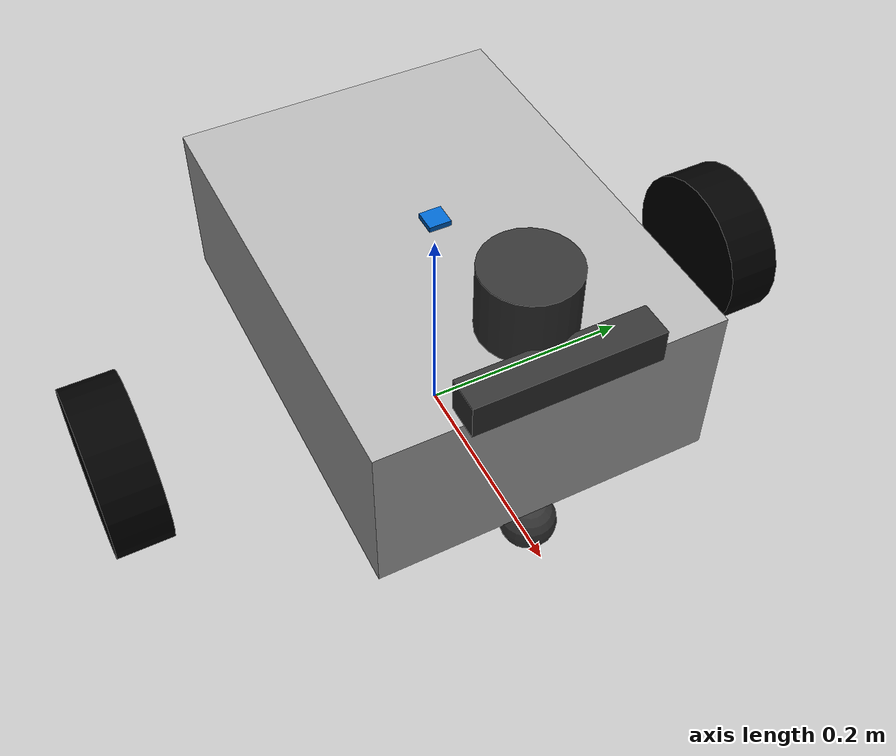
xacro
<?xml version="1.0"?>
<robot xmlns:xacro="http://www.ros.org/wiki/xacro" name="diff_drive_robot">

  <!--  Parameters                                               -->
  <xacro:property name="base_length"  value="0.40"/>
  <xacro:property name="base_width"   value="0.30"/>
  <xacro:property name="base_height"  value="0.15"/>
  <xacro:property name="wheel_radius" value="0.075"/>
  <xacro:property name="wheel_width"  value="0.05"/>
  <xacro:property name="wheel_sep"    value="0.30"/>   <!-- half-track -->
  <xacro:property name="caster_r"     value="0.025"/>

  <!--  Materials                                                -->
  <material name="dark_grey"><color rgba="0.2 0.2 0.2 1"/></material>
  <material name="light_grey"><color rgba="0.7 0.7 0.7 1"/></material>
  <material name="blue"><color rgba="0.0 0.4 0.8 1"/></material>
  <material name="black"><color rgba="0.0 0.0 0.0 1"/></material>

  <!--  Macros                                                   -->
  <xacro:macro name="wheel" params="name side reflect">
    <link name="${name}_wheel">
      <visual>
        <origin xyz="0 0 0" rpy="${pi/2} 0 0"/>
        <geometry><cylinder radius="${wheel_radius}" length="${wheel_width}"/></geometry>
        <material name="black"/>
      </visual>
      <collision>
        <origin xyz="0 0 0" rpy="${pi/2} 0 0"/>
        <geometry><cylinder radius="${wheel_radius}" length="${wheel_width}"/></geometry>
      </collision>
      <inertial>
        <mass value="0.5"/>
        <inertia ixx="0.001" ixy="0" ixz="0" iyy="0.001" iyz="0" izz="0.001"/>
      </inertial>
    </link>

    <joint name="${name}_wheel_joint" type="continuous">
      <parent link="base_link"/>
      <child  link="${name}_wheel"/>
      <origin xyz="0 ${reflect * wheel_sep} 0" rpy="0 0 0"/>
      <axis xyz="0 1 0"/>
      <dynamics damping="0.1"/>
    </joint>
  </xacro:macro>

  <!--  Base footprint                                           -->
  <link name="base_footprint"/>

  <joint name="base_footprint_joint" type="fixed">
    <parent link="base_footprint"/>
    <child  link="base_link"/>
    <origin xyz="0 0 ${wheel_radius}" rpy="0 0 0"/>
  </joint>

  <!--  Base link                                                -->
  <link name="base_link">
    <visual>
      <origin xyz="0 0 ${base_height/2}" rpy="0 0 0"/>
      <geometry>
        <box size="${base_length} ${base_width} ${base_height}"/>
      </geometry>
      <material name="light_grey"/>
    </visual>
    <collision>
      <origin xyz="0 0 ${base_height/2}" rpy="0 0 0"/>
      <geometry>
        <box size="${base_length} ${base_width} ${base_height}"/>
      </geometry>
    </collision>
    <inertial>
      <mass value="5.0"/>
      <origin xyz="0 0 ${base_height/2}"/>
      <inertia ixx="0.05" ixy="0" ixz="0" iyy="0.05" iyz="0" izz="0.08"/>
    </inertial>
  </link>

  <!--  Wheels                                                   -->
  <xacro:wheel name="left"  side="left"  reflect=" 1"/>
  <xacro:wheel name="right" side="right" reflect="-1"/>

  <!-- Front caster -->
  <link name="caster_link">
    <visual>
      <geometry><sphere radius="${caster_r}"/></geometry>
      <material name="dark_grey"/>
    </visual>
    <collision>
      <geometry><sphere radius="${caster_r}"/></geometry>
    </collision>
    <inertial>
      <mass value="0.1"/>
      <inertia ixx="0.0001" ixy="0" ixz="0" iyy="0.0001" iyz="0" izz="0.0001"/>
    </inertial>
  </link>
  <joint name="caster_joint" type="fixed">
    <parent link="base_link"/>
    <child  link="caster_link"/>
    <origin xyz="${base_length/2 - caster_r} 0 ${-wheel_radius + caster_r}" rpy="0 0 0"/>
  </joint>

  <!--  IMU                                                      -->
  <link name="imu_link">
    <visual>
      <geometry><box size="0.02 0.02 0.01"/></geometry>
      <material name="blue"/>
    </visual>
    <inertial>
      <mass value="0.01"/>
      <inertia ixx="0.000001" ixy="0" ixz="0" iyy="0.000001" iyz="0" izz="0.000001"/>
    </inertial>
  </link>
  <joint name="imu_joint" type="fixed">
    <parent link="base_link"/>
    <child  link="imu_link"/>
    <origin xyz="0 0 ${base_height}" rpy="0 0 0"/>
  </joint>

  <!--  2D LiDAR                                                 -->
  <link name="lidar_link">
    <visual>
      <geometry><cylinder radius="0.04" length="0.06"/></geometry>
      <material name="dark_grey"/>
    </visual>
    <collision>
      <geometry><cylinder radius="0.04" length="0.06"/></geometry>
    </collision>
    <inertial>
      <mass value="0.15"/>
      <inertia ixx="0.0001" ixy="0" ixz="0" iyy="0.0001" iyz="0" izz="0.0001"/>
    </inertial>
  </link>
  <joint name="lidar_joint" type="fixed">
    <parent link="base_link"/>
    <child  link="lidar_link"/>
    <origin xyz="${base_length/2 - 0.05} 0 ${base_height + 0.05}" rpy="0 0 0"/>
  </joint>

  <!--  Stereo Camera                                            -->
  <xacro:property name="stereo_baseline" value="0.12"/>   <!-- 12 cm baseline -->

  <!-- Stereo camera housing -->
  <link name="stereo_camera_link">
    <visual>
      <geometry><box size="0.03 ${stereo_baseline + 0.04} 0.03"/></geometry>
      <material name="dark_grey"/>
    </visual>
    <inertial>
      <mass value="0.15"/>
      <inertia ixx="0.0001" ixy="0" ixz="0" iyy="0.0001" iyz="0" izz="0.0001"/>
    </inertial>
  </link>
  <joint name="stereo_camera_joint" type="fixed">
    <parent link="base_link"/>
    <child  link="stereo_camera_link"/>
    <origin xyz="${base_length/2} 0 ${base_height + 0.02}" rpy="0 0 0"/>
  </joint>

  <!-- Left lens -->
  <link name="camera_left_link"/>
  <joint name="camera_left_joint" type="fixed">
    <parent link="stereo_camera_link"/>
    <child  link="camera_left_link"/>
    <origin xyz="0 ${stereo_baseline/2} 0" rpy="0 0 0"/>
  </joint>

  <link name="camera_left_optical_link"/>
  <joint name="camera_left_optical_joint" type="fixed">
    <parent link="camera_left_link"/>
    <child  link="camera_left_optical_link"/>
    <origin xyz="0 0 0" rpy="${-pi/2} 0 ${-pi/2}"/>
  </joint>

  <!-- Right lens -->
  <link name="camera_right_link"/>
  <joint name="camera_right_joint" type="fixed">
    <parent link="stereo_camera_link"/>
    <child  link="camera_right_link"/>
    <origin xyz="0 ${-stereo_baseline/2} 0" rpy="0 0 0"/>
  </joint>

  <link name="camera_right_optical_link"/>
  <joint name="camera_right_optical_joint" type="fixed">
    <parent link="camera_right_link"/>
    <child  link="camera_right_optical_link"/>
    <origin xyz="0 0 0" rpy="${-pi/2} 0 ${-pi/2}"/>
  </joint>

  <!--  Gazebo plugins                                           -->
  <!-- ros2_control interface -->
  <ros2_control name="diff_drive_system" type="system">
    <hardware>
      <plugin>gazebo_ros2_control/GazeboSystem</plugin>
    </hardware>
    <joint name="left_wheel_joint">
      <command_interface name="velocity"/>
      <state_interface name="velocity"/>
      <state_interface name="position"/>
    </joint>
    <joint name="right_wheel_joint">
      <command_interface name="velocity"/>
      <state_interface name="velocity"/>
      <state_interface name="position"/>
    </joint>
  </ros2_control>

  <gazebo>
    <plugin name="gazebo_ros2_control" filename="libgazebo_ros2_control.so">
      <parameters>$(find diff_drive_description)/config/controllers.yaml</parameters>
    </plugin>
  </gazebo>

  <!-- IMU plugin -->
  <gazebo reference="imu_link">
    <sensor name="imu_sensor" type="imu">
      <always_on>true</always_on>
      <update_rate>100</update_rate>
      <plugin name="imu_plugin" filename="libgazebo_ros_imu_sensor.so">
        <ros><topic>imu/data</topic></ros>
        <frame_name>imu_link</frame_name>
      </plugin>
    </sensor>
  </gazebo>

  <!-- LiDAR plugin -->
  <gazebo reference="lidar_link">
    <sensor name="lidar" type="ray">
      <always_on>true</always_on>
      <update_rate>10</update_rate>
      <ray>
        <scan>
          <horizontal>
            <samples>360</samples>
            <resolution>1</resolution>
            <min_angle>${-pi}</min_angle>
            <max_angle>${pi}</max_angle>
          </horizontal>
        </scan>
        <range>
          <min>0.12</min>
          <max>12.0</max>
        </range>
      </ray>
      <plugin name="lidar_plugin" filename="libgazebo_ros_ray_sensor.so">
        <ros><topic>scan</topic></ros>
        <output_type>sensor_msgs/LaserScan</output_type>
        <frame_name>lidar_link</frame_name>
      </plugin>
    </sensor>
  </gazebo>

  <!-- Stereo camera plugin (left) -->
  <gazebo reference="camera_left_link">
    <sensor name="stereo_camera" type="multicamera">
      <always_on>true</always_on>
      <update_rate>30</update_rate>
      <camera name="left">
        <horizontal_fov>1.3962634</horizontal_fov>
        <image><width>640</width><height>480</height><format>R8G8B8</format></image>
        <clip><near>0.05</near><far>30</far></clip>
      </camera>
      <camera name="right">
        <horizontal_fov>1.3962634</horizontal_fov>
        <image><width>640</width><height>480</height><format>R8G8B8</format></image>
        <clip><near>0.05</near><far>30</far></clip>
        <pose>0 ${-stereo_baseline} 0 0 0 0</pose>
      </camera>
      <plugin name="stereo_camera_plugin" filename="libgazebo_ros_multicamera.so">
        <ros>
          <remapping>~/left/image_raw:=stereo/left/image_raw</remapping>
          <remapping>~/right/image_raw:=stereo/right/image_raw</remapping>
          <remapping>~/left/camera_info:=stereo/left/camera_info</remapping>
          <remapping>~/right/camera_info:=stereo/right/camera_info</remapping>
        </ros>
        <left_frame_name>camera_left_optical_link</left_frame_name>
        <right_frame_name>camera_right_optical_link</right_frame_name>
        <hack_baseline>${stereo_baseline}</hack_baseline>
      </plugin>
    </sensor>
  </gazebo>

</robot>
